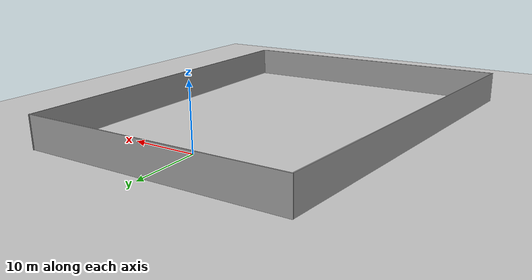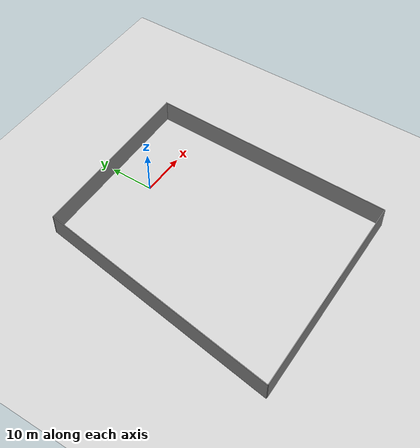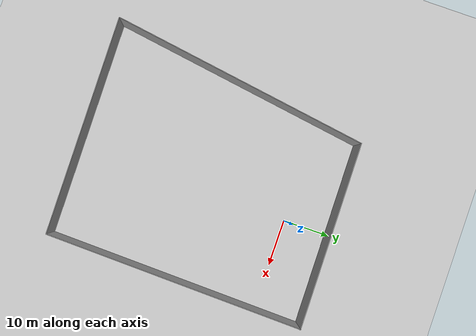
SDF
<sdf version="1.7">
 <world name="default">
  <light name="sun" type="directional">
   <pose>0 0 10 0 -0 0</pose>
   <diffuse>0.8 0.8 0.8 1</diffuse>
   <specular>0.2 0.2 0.2 1</specular>
   <attenuation>
    <range>1000</range>
    <constant>0.9</constant>
    <linear>0.01</linear>
    <quadratic>0.001</quadratic>
   </attenuation>
   <direction>-0.5 0.1 -0.9</direction>
   <spot><inner_angle>0</inner_angle><outer_angle>0</outer_angle><falloff>0</falloff></spot>
  </light>
  <model name="ground_plane">
   <static>1</static>
   <link name="link">
    <collision name="collision">
     <geometry><plane><normal>0 0 1</normal><size>100 100</size></plane></geometry>
     <surface>
      <contact><collide_bitmask>65535</collide_bitmask></contact>
      <friction><ode><mu>100</mu><mu2>50</mu2></ode></friction>
     </surface>
    </collision>
    <visual name="visual">
     <cast_shadows>0</cast_shadows>
     <geometry><plane><normal>0 0 1</normal><size>100 100</size></plane></geometry>
     <material>
      <script><uri>file://media/materials/scripts/gazebo.material</uri><name>Gazebo/Grey</name></script>
     </material>
    </visual>
   </link>
  </model>
  <gravity>0 0 -9.8</gravity>
  <magnetic_field>6e-06 2.3e-05 -4.2e-05</magnetic_field>
  <atmosphere type="adiabatic"/>
  <physics type="ode">
   <max_step_size>0.001</max_step_size>
   <real_time_factor>1</real_time_factor>
   <real_time_update_rate>1000</real_time_update_rate>
  </physics>
  <scene><ambient>0.4 0.4 0.4 1</ambient><background>0.7 0.7 0.7 1</background><shadows>1</shadows></scene>
  <spherical_coordinates>
   <surface_model>EARTH_WGS84</surface_model>
   <latitude_deg>0</latitude_deg>
   <longitude_deg>0</longitude_deg>
   <elevation>0</elevation>
   <heading_deg>0</heading_deg>
  </spherical_coordinates>
  <model name="simple_room">
   <pose>-4.46891 -18.6135 0 0 -0 0</pose>
   <link name="Wall_1">
    <collision name="Wall_1_Collision">
     <geometry><box><size>40 0.15 5</size></box></geometry>
     <pose>0 0 2.5 0 -0 0</pose>
    </collision>
    <visual name="Wall_1_Visual">
     <pose>0 0 2.5 0 -0 0</pose>
     <geometry><box><size>40 0.15 5</size></box></geometry>
     <material>
      <script><uri>file://media/materials/scripts/gazebo.material</uri><name>Gazebo/Grey</name></script>
      <ambient>1 1 1 1</ambient>
     </material>
     <meta><layer>0</layer></meta>
    </visual>
    <pose>4.11014 27.7213 0 0 -0 0.010806</pose>
   </link>
   <link name="Wall_3">
    <collision name="Wall_3_Collision">
     <geometry><box><size>55.374 0.15 5</size></box></geometry>
     <pose>0 0 2.5 0 -0 0</pose>
    </collision>
    <visual name="Wall_3_Visual">
     <pose>0 0 2.5 0 -0 0</pose>
     <geometry><box><size>55.374 0.15 5</size></box></geometry>
     <material>
      <script><uri>file://media/materials/scripts/gazebo.material</uri><name>Gazebo/Grey</name></script>
      <ambient>1 1 1 1</ambient>
     </material>
     <meta><layer>0</layer></meta>
    </visual>
    <pose>23.4276 0.423866 0 0 -0 -1.59107</pose>
   </link>
   <link name="Wall_4">
    <collision name="Wall_4_Collision">
     <geometry><box><size>46.8367 0.15 5</size></box></geometry>
     <pose>0 0 2.5 0 -0 0</pose>
    </collision>
    <visual name="Wall_4_Visual">
     <pose>0 0 2.5 0 -0 0</pose>
     <geometry><box><size>46.8367 0.15 5</size></box></geometry>
     <material>
      <script><uri>file://media/materials/scripts/gazebo.material</uri><name>Gazebo/Grey</name></script>
      <ambient>1 1 1 1</ambient>
     </material>
     <meta><layer>0</layer></meta>
    </visual>
    <pose>-0.471599 -27.6064 0 0 -0 -3.12343</pose>
   </link>
   <link name="Wall_5">
    <collision name="Wall_5_Collision">
     <geometry><box><size>56.1945 0.15 5</size></box></geometry>
     <pose>0 0 2.5 0 -0 0</pose>
    </collision>
    <visual name="Wall_5_Visual">
     <pose>0 0 2.5 0 -0 0</pose>
     <geometry><box><size>56.1945 0.15 5</size></box></geometry>
     <material>
      <script><uri>file://media/materials/scripts/gazebo.material</uri><name>Gazebo/Grey</name></script>
      <ambient>1 1 1 1</ambient>
     </material>
     <meta><layer>0</layer></meta>
    </visual>
    <pose>-19.9097 -0.240723 0 0 -0 1.42342</pose>
   </link>
   <static>1</static>
  </model>
 </world>
</sdf>
